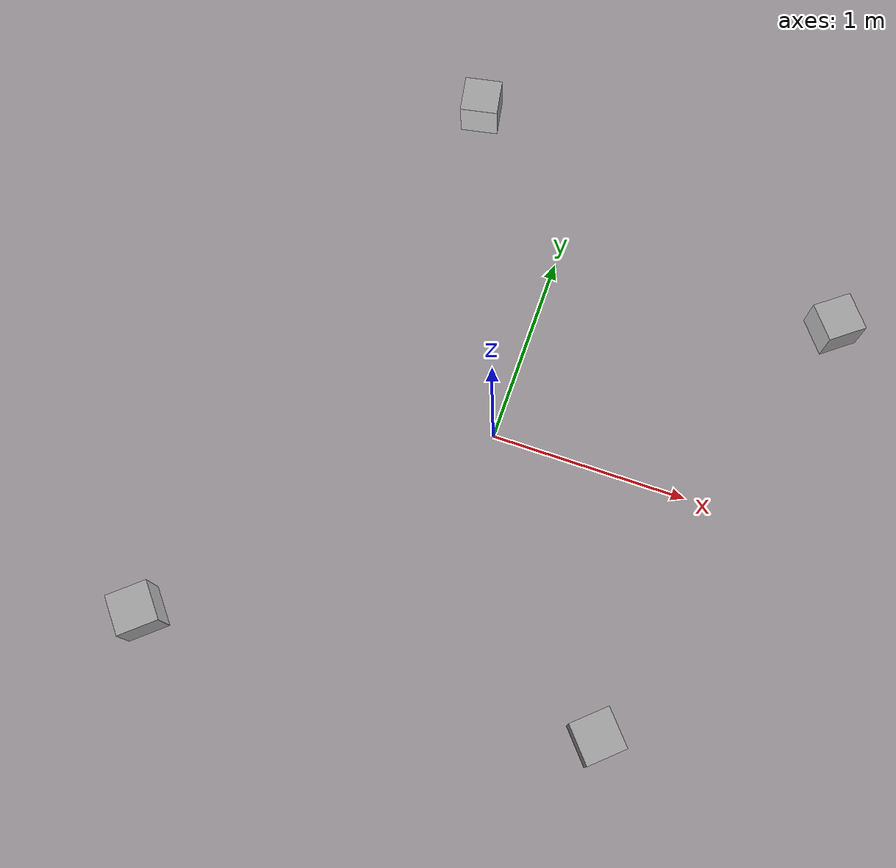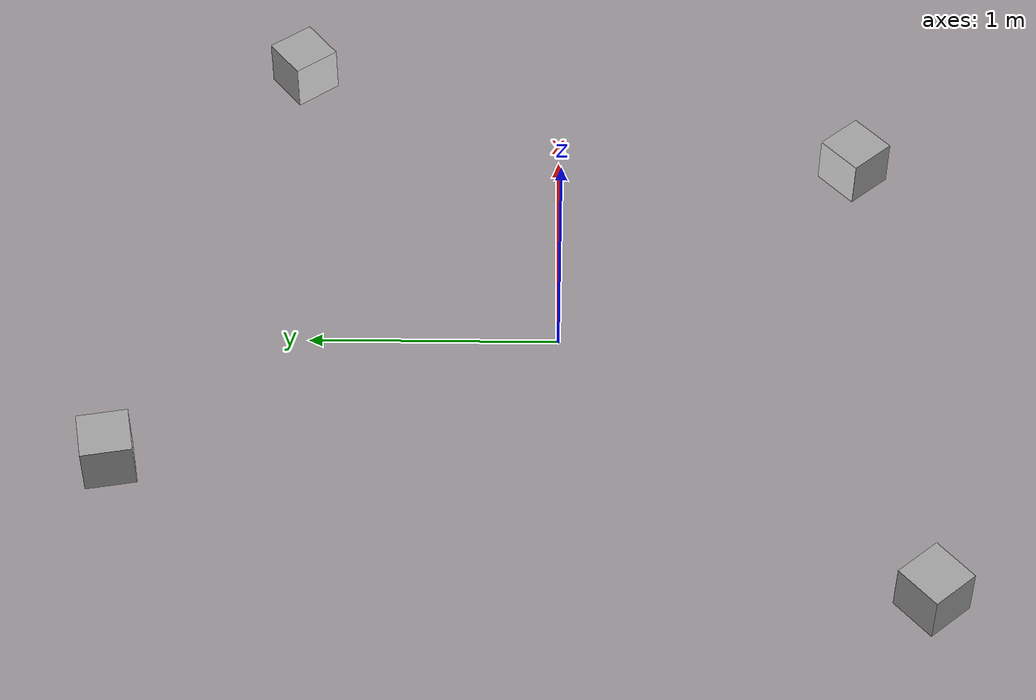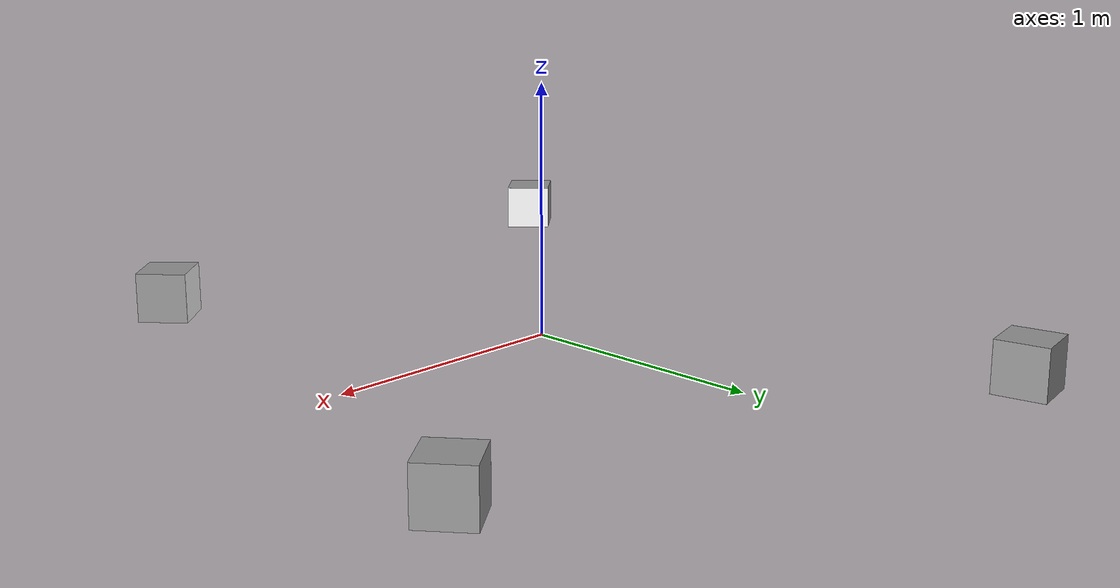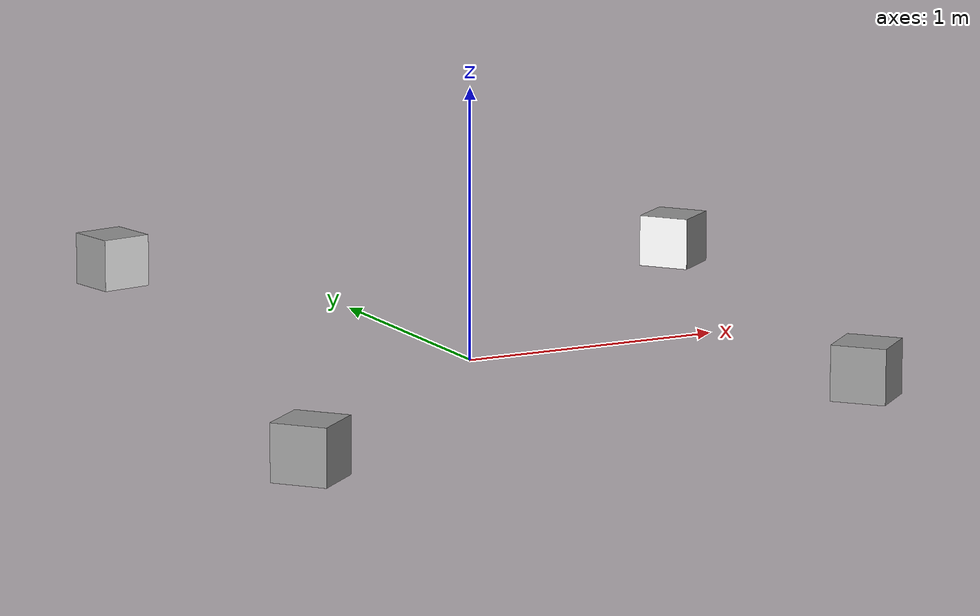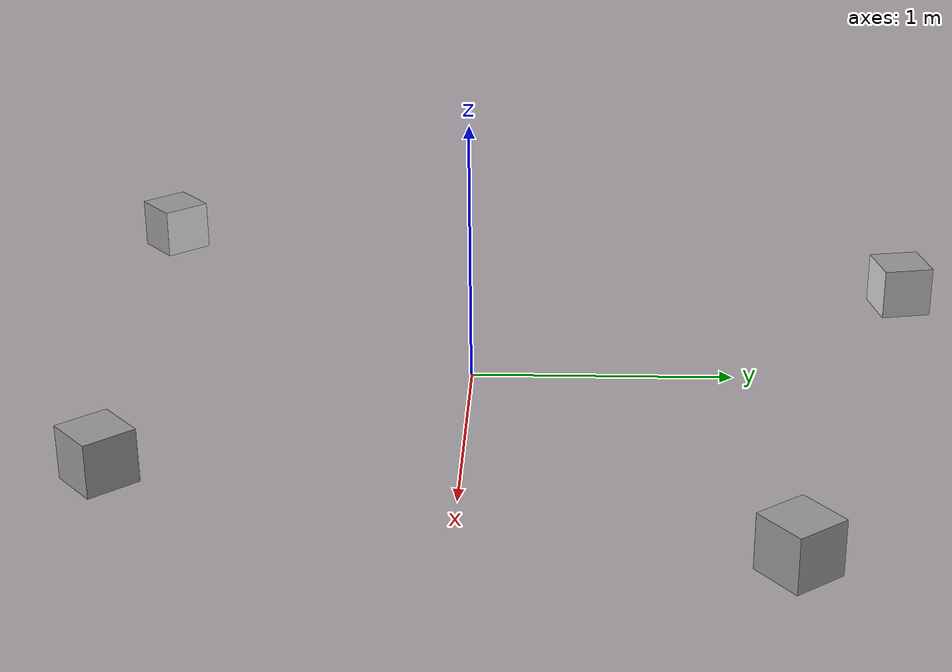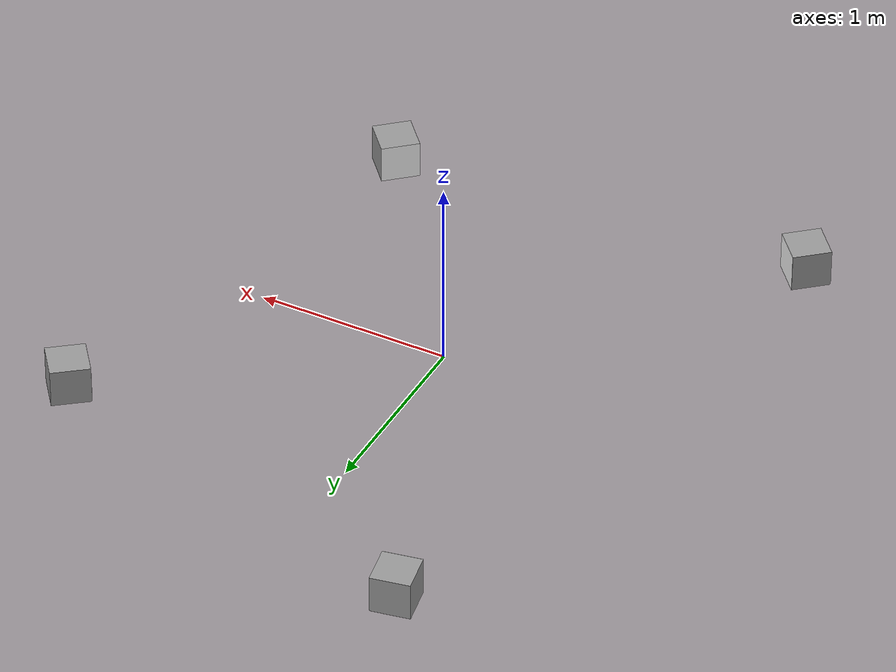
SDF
<?xml version='1.0'?>
<sdf version='1.7'>
  <model name='new_world'>
    <model name='marker11_box'>
      <link name='marker'>
        <inertial>
          <mass>0.1</mass>
          <inertia>
            <ixx>0</ixx>
            <ixy>0</ixy>
            <ixz>0</ixz>
            <iyy>0</iyy>
            <iyz>0</iyz>
            <izz>0</izz>
          </inertia>
          <pose>0 0 0 0 -0 0</pose>
        </inertial>
        <self_collide>1</self_collide>
        <kinematic>0</kinematic>
        <gravity>1</gravity>
        <enable_wind>0</enable_wind>
        <pose>-0.76428 -0.101106 0.120004 -0.015494 1.56996 -0.015507</pose>
        <visual name='visual'>
          <geometry>
            <box>
              <size>0.2 0.2 0.001</size>
            </box>
          </geometry>
          <material>
            <script>
              <uri>model://marker11/material/scripts</uri>
              <uri>model://marker11/material/textures</uri>
              <name>Aruco/marker11</name>
            </script>
            <shader type='pixel'>
              <normal_map>__default__</normal_map>
            </shader>
            <emissive>0 0 0 1</emissive>
            <ambient>1 1 1 1</ambient>
            <diffuse>1 1 1 1</diffuse>
            <specular>0 0 0 1</specular>
          </material>
          <pose>0 0 0 0 -0 0</pose>
          <transparency>0</transparency>
          <cast_shadows>1</cast_shadows>
        </visual>
        <collision name='collision'>
          <laser_retro>0</laser_retro>
          <max_contacts>10</max_contacts>
          <pose>0 0 0 0 -0 0</pose>
          <geometry>
            <box>
              <size>0.2 0.2 0.02</size>
            </box>
          </geometry>
          <surface>
            <friction>
              <ode>
                <mu>1</mu>
                <mu2>1</mu2>
                <fdir1>0 0 0</fdir1>
                <slip1>0</slip1>
                <slip2>0</slip2>
              </ode>
              <torsional>
                <coefficient>1</coefficient>
                <patch_radius>0</patch_radius>
                <surface_radius>0</surface_radius>
                <use_patch_radius>1</use_patch_radius>
                <ode>
                  <slip>0</slip>
                </ode>
              </torsional>
            </friction>
            <bounce>
              <restitution_coefficient>0</restitution_coefficient>
              <threshold>1e+06</threshold>
            </bounce>
            <contact>
              <collide_without_contact>0</collide_without_contact>
              <collide_without_contact_bitmask>1</collide_without_contact_bitmask>
              <collide_bitmask>1</collide_bitmask>
              <ode>
                <soft_cfm>0</soft_cfm>
                <soft_erp>0.2</soft_erp>
                <kp>1e+13</kp>
                <kd>1</kd>
                <max_vel>0.01</max_vel>
                <min_depth>0</min_depth>
              </ode>
              <bullet>
                <split_impulse>1</split_impulse>
                <split_impulse_penetration_threshold>-0.01</split_impulse_penetration_threshold>
                <soft_cfm>0</soft_cfm>
                <soft_erp>0.2</soft_erp>
                <kp>1e+13</kp>
                <kd>1</kd>
              </bullet>
            </contact>
          </surface>
        </collision>
      </link>
      <link name='link_1'>
        <inertial>
          <mass>1</mass>
          <inertia>
            <ixx>0.166667</ixx>
            <ixy>0</ixy>
            <ixz>0</ixz>
            <iyy>0.166667</iyy>
            <iyz>0</iyz>
            <izz>0.166667</izz>
          </inertia>
          <pose>0 0 0 0 -0 0</pose>
        </inertial>
        <pose>-0.86428 -0.101106 0.12 -1.3e-05 -4.2e-05 0</pose>
        <gravity>1</gravity>
        <self_collide>0</self_collide>
        <kinematic>0</kinematic>
        <enable_wind>0</enable_wind>
        <visual name='visual'>
          <pose>0 0 0 0 -0 0</pose>
          <geometry>
            <box>
              <size>0.2 0.2 0.2</size>
            </box>
          </geometry>
          <material>
            <lighting>1</lighting>
            <script>
              <uri>file://media/materials/scripts/gazebo.material</uri>
              <name>Gazebo/Grey</name>
            </script>
            <shader type='pixel'>
              <normal_map>__default__</normal_map>
            </shader>
            <emissive>0 0 0 1</emissive>
            <ambient>0.3 0.3 0.3 1</ambient>
            <diffuse>0.7 0.7 0.7 1</diffuse>
            <specular>0.01 0.01 0.01 1</specular>
          </material>
          <transparency>0</transparency>
          <cast_shadows>1</cast_shadows>
        </visual>
        <collision name='collision'>
          <laser_retro>0</laser_retro>
          <max_contacts>10</max_contacts>
          <pose>0 0 0 0 -0 0</pose>
          <geometry>
            <box>
              <size>0.2 0.2 0.2</size>
            </box>
          </geometry>
          <surface>
            <friction>
              <ode>
                <mu>1</mu>
                <mu2>1</mu2>
                <fdir1>0 0 0</fdir1>
                <slip1>0</slip1>
                <slip2>0</slip2>
              </ode>
              <torsional>
                <coefficient>1</coefficient>
                <patch_radius>0</patch_radius>
                <surface_radius>0</surface_radius>
                <use_patch_radius>1</use_patch_radius>
                <ode>
                  <slip>0</slip>
                </ode>
              </torsional>
            </friction>
            <bounce>
              <restitution_coefficient>0</restitution_coefficient>
              <threshold>1e+06</threshold>
            </bounce>
            <contact>
              <collide_without_contact>0</collide_without_contact>
              <collide_without_contact_bitmask>1</collide_without_contact_bitmask>
              <collide_bitmask>1</collide_bitmask>
              <ode>
                <soft_cfm>0</soft_cfm>
                <soft_erp>0.2</soft_erp>
                <kp>1e+13</kp>
                <kd>1</kd>
                <max_vel>0.01</max_vel>
                <min_depth>0</min_depth>
              </ode>
              <bullet>
                <split_impulse>1</split_impulse>
                <split_impulse_penetration_threshold>-0.01</split_impulse_penetration_threshold>
                <soft_cfm>0</soft_cfm>
                <soft_erp>0.2</soft_erp>
                <kp>1e+13</kp>
                <kd>1</kd>
              </bullet>
            </contact>
          </surface>
        </collision>
      </link>
      <joint name='link_1_JOINT_3' type='fixed'>
        <parent>link_1</parent>
        <child>marker</child>
        <pose>0 0 0 0 -0 0</pose>
        <physics>
          <ode>
            <limit>
              <cfm>0</cfm>
              <erp>0.2</erp>
            </limit>
            <suspension>
              <cfm>0</cfm>
              <erp>0.2</erp>
            </suspension>
          </ode>
        </physics>
      </joint>
      <static>0</static>
      <allow_auto_disable>1</allow_auto_disable>
      <pose>-0.705951 -0.740992 0 0 -0 0.710858</pose>
    </model>
    <model name='marker15_box'>
      <link name='marker'>
        <inertial>
          <mass>0.1</mass>
          <inertia>
            <ixx>0</ixx>
            <ixy>0</ixy>
            <ixz>0</ixz>
            <iyy>0</iyy>
            <iyz>0</iyz>
            <izz>0</izz>
          </inertia>
          <pose>0 0 0 0 -0 0</pose>
        </inertial>
        <self_collide>1</self_collide>
        <kinematic>0</kinematic>
        <gravity>1</gravity>
        <enable_wind>0</enable_wind>
        <pose>-0.76428 -0.101106 0.120004 -0.015494 1.56996 -0.015507</pose>
        <visual name='visual'>
          <geometry>
            <box>
              <size>0.2 0.2 0.001</size>
            </box>
          </geometry>
          <material>
            <script>
              <uri>model://marker15/material/scripts</uri>
              <uri>model://marker15/material/textures</uri>
              <name>Aruco/marker15</name>
            </script>
            <shader type='pixel'>
              <normal_map>__default__</normal_map>
            </shader>
            <emissive>0 0 0 1</emissive>
            <ambient>1 1 1 1</ambient>
            <diffuse>1 1 1 1</diffuse>
            <specular>0 0 0 1</specular>
          </material>
          <pose>0 0 0 0 -0 0</pose>
          <transparency>0</transparency>
          <cast_shadows>1</cast_shadows>
        </visual>
        <collision name='collision'>
          <laser_retro>0</laser_retro>
          <max_contacts>10</max_contacts>
          <pose>0 0 0 0 -0 0</pose>
          <geometry>
            <box>
              <size>0.2 0.2 0.02</size>
            </box>
          </geometry>
          <surface>
            <friction>
              <ode>
                <mu>1</mu>
                <mu2>1</mu2>
                <fdir1>0 0 0</fdir1>
                <slip1>0</slip1>
                <slip2>0</slip2>
              </ode>
              <torsional>
                <coefficient>1</coefficient>
                <patch_radius>0</patch_radius>
                <surface_radius>0</surface_radius>
                <use_patch_radius>1</use_patch_radius>
                <ode>
                  <slip>0</slip>
                </ode>
              </torsional>
            </friction>
            <bounce>
              <restitution_coefficient>0</restitution_coefficient>
              <threshold>1e+06</threshold>
            </bounce>
            <contact>
              <collide_without_contact>0</collide_without_contact>
              <collide_without_contact_bitmask>1</collide_without_contact_bitmask>
              <collide_bitmask>1</collide_bitmask>
              <ode>
                <soft_cfm>0</soft_cfm>
                <soft_erp>0.2</soft_erp>
                <kp>1e+13</kp>
                <kd>1</kd>
                <max_vel>0.01</max_vel>
                <min_depth>0</min_depth>
              </ode>
              <bullet>
                <split_impulse>1</split_impulse>
                <split_impulse_penetration_threshold>-0.01</split_impulse_penetration_threshold>
                <soft_cfm>0</soft_cfm>
                <soft_erp>0.2</soft_erp>
                <kp>1e+13</kp>
                <kd>1</kd>
              </bullet>
            </contact>
          </surface>
        </collision>
      </link>
      <link name='link_1'>
        <inertial>
          <mass>1</mass>
          <inertia>
            <ixx>0.166667</ixx>
            <ixy>0</ixy>
            <ixz>0</ixz>
            <iyy>0.166667</iyy>
            <iyz>0</iyz>
            <izz>0.166667</izz>
          </inertia>
          <pose>0 0 0 0 -0 0</pose>
        </inertial>
        <pose>-0.86428 -0.101106 0.12 -1.3e-05 -4.2e-05 0</pose>
        <gravity>1</gravity>
        <self_collide>0</self_collide>
        <kinematic>0</kinematic>
        <enable_wind>0</enable_wind>
        <visual name='visual'>
          <pose>0 0 0 0 -0 0</pose>
          <geometry>
            <box>
              <size>0.2 0.2 0.2</size>
            </box>
          </geometry>
          <material>
            <lighting>1</lighting>
            <script>
              <uri>file://media/materials/scripts/gazebo.material</uri>
              <name>Gazebo/Grey</name>
            </script>
            <shader type='pixel'>
              <normal_map>__default__</normal_map>
            </shader>
            <emissive>0 0 0 1</emissive>
            <ambient>0.3 0.3 0.3 1</ambient>
            <diffuse>0.7 0.7 0.7 1</diffuse>
            <specular>0.01 0.01 0.01 1</specular>
          </material>
          <transparency>0</transparency>
          <cast_shadows>1</cast_shadows>
        </visual>
        <collision name='collision'>
          <laser_retro>0</laser_retro>
          <max_contacts>10</max_contacts>
          <pose>0 0 0 0 -0 0</pose>
          <geometry>
            <box>
              <size>0.2 0.2 0.2</size>
            </box>
          </geometry>
          <surface>
            <friction>
              <ode>
                <mu>1</mu>
                <mu2>1</mu2>
                <fdir1>0 0 0</fdir1>
                <slip1>0</slip1>
                <slip2>0</slip2>
              </ode>
              <torsional>
                <coefficient>1</coefficient>
                <patch_radius>0</patch_radius>
                <surface_radius>0</surface_radius>
                <use_patch_radius>1</use_patch_radius>
                <ode>
                  <slip>0</slip>
                </ode>
              </torsional>
            </friction>
            <bounce>
              <restitution_coefficient>0</restitution_coefficient>
              <threshold>1e+06</threshold>
            </bounce>
            <contact>
              <collide_without_contact>0</collide_without_contact>
              <collide_without_contact_bitmask>1</collide_without_contact_bitmask>
              <collide_bitmask>1</collide_bitmask>
              <ode>
                <soft_cfm>0</soft_cfm>
                <soft_erp>0.2</soft_erp>
                <kp>1e+13</kp>
                <kd>1</kd>
                <max_vel>0.01</max_vel>
                <min_depth>0</min_depth>
              </ode>
              <bullet>
                <split_impulse>1</split_impulse>
                <split_impulse_penetration_threshold>-0.01</split_impulse_penetration_threshold>
                <soft_cfm>0</soft_cfm>
                <soft_erp>0.2</soft_erp>
                <kp>1e+13</kp>
                <kd>1</kd>
              </bullet>
            </contact>
          </surface>
        </collision>
      </link>
      <joint name='link_1_JOINT_3' type='fixed'>
        <parent>link_1</parent>
        <child>marker</child>
        <pose>0 0 0 0 -0 0</pose>
        <physics>
          <ode>
            <limit>
              <cfm>0</cfm>
              <erp>0.2</erp>
            </limit>
            <suspension>
              <cfm>0</cfm>
              <erp>0.2</erp>
            </suspension>
          </ode>
        </physics>
      </joint>
      <static>0</static>
      <allow_auto_disable>1</allow_auto_disable>
      <pose>0.267977 -0.649933 -0 0 -0 2.29429</pose>
    </model>
    <model name='marker22_box'>
      <link name='marker'>
        <inertial>
          <mass>0.1</mass>
          <inertia>
            <ixx>0</ixx>
            <ixy>0</ixy>
            <ixz>0</ixz>
            <iyy>0</iyy>
            <iyz>0</iyz>
            <izz>0</izz>
          </inertia>
          <pose>0 0 0 0 -0 0</pose>
        </inertial>
        <self_collide>1</self_collide>
        <kinematic>0</kinematic>
        <gravity>1</gravity>
        <enable_wind>0</enable_wind>
        <pose>-0.76428 -0.101106 0.120004 -0.015494 1.56996 -0.015507</pose>
        <visual name='visual'>
          <geometry>
            <box>
              <size>0.2 0.2 0.001</size>
            </box>
          </geometry>
          <material>
            <script>
              <uri>model://marker22/material/scripts</uri>
              <uri>model://marker22/material/textures</uri>
              <name>Aruco/marker22</name>
            </script>
            <shader type='pixel'>
              <normal_map>__default__</normal_map>
            </shader>
            <emissive>0 0 0 1</emissive>
            <ambient>1 1 1 1</ambient>
            <diffuse>1 1 1 1</diffuse>
            <specular>0 0 0 1</specular>
          </material>
          <pose>0 0 0 0 -0 0</pose>
          <transparency>0</transparency>
          <cast_shadows>1</cast_shadows>
        </visual>
        <collision name='collision'>
          <laser_retro>0</laser_retro>
          <max_contacts>10</max_contacts>
          <pose>0 0 0 0 -0 0</pose>
          <geometry>
            <box>
              <size>0.2 0.2 0.02</size>
            </box>
          </geometry>
          <surface>
            <friction>
              <ode>
                <mu>1</mu>
                <mu2>1</mu2>
                <fdir1>0 0 0</fdir1>
                <slip1>0</slip1>
                <slip2>0</slip2>
              </ode>
              <torsional>
                <coefficient>1</coefficient>
                <patch_radius>0</patch_radius>
                <surface_radius>0</surface_radius>
                <use_patch_radius>1</use_patch_radius>
                <ode>
                  <slip>0</slip>
                </ode>
              </torsional>
            </friction>
            <bounce>
              <restitution_coefficient>0</restitution_coefficient>
              <threshold>1e+06</threshold>
            </bounce>
            <contact>
              <collide_without_contact>0</collide_without_contact>
              <collide_without_contact_bitmask>1</collide_without_contact_bitmask>
              <collide_bitmask>1</collide_bitmask>
              <ode>
                <soft_cfm>0</soft_cfm>
                <soft_erp>0.2</soft_erp>
                <kp>1e+13</kp>
                <kd>1</kd>
                <max_vel>0.01</max_vel>
                <min_depth>0</min_depth>
              </ode>
              <bullet>
                <split_impulse>1</split_impulse>
                <split_impulse_penetration_threshold>-0.01</split_impulse_penetration_threshold>
                <soft_cfm>0</soft_cfm>
                <soft_erp>0.2</soft_erp>
                <kp>1e+13</kp>
                <kd>1</kd>
              </bullet>
            </contact>
          </surface>
        </collision>
      </link>
      <link name='link_1'>
        <inertial>
          <mass>1</mass>
          <inertia>
            <ixx>0.166667</ixx>
            <ixy>0</ixy>
            <ixz>0</ixz>
            <iyy>0.166667</iyy>
            <iyz>0</iyz>
            <izz>0.166667</izz>
          </inertia>
          <pose>0 0 0 0 -0 0</pose>
        </inertial>
        <pose>-0.86428 -0.101106 0.12 -1.3e-05 -4.2e-05 0</pose>
        <gravity>1</gravity>
        <self_collide>0</self_collide>
        <kinematic>0</kinematic>
        <enable_wind>0</enable_wind>
        <visual name='visual'>
          <pose>0 0 0 0 -0 0</pose>
          <geometry>
            <box>
              <size>0.2 0.2 0.2</size>
            </box>
          </geometry>
          <material>
            <lighting>1</lighting>
            <script>
              <uri>file://media/materials/scripts/gazebo.material</uri>
              <name>Gazebo/Grey</name>
            </script>
            <shader type='pixel'>
              <normal_map>__default__</normal_map>
            </shader>
            <emissive>0 0 0 1</emissive>
            <ambient>0.3 0.3 0.3 1</ambient>
            <diffuse>0.7 0.7 0.7 1</diffuse>
            <specular>0.01 0.01 0.01 1</specular>
          </material>
          <transparency>0</transparency>
          <cast_shadows>1</cast_shadows>
        </visual>
        <collision name='collision'>
          <laser_retro>0</laser_retro>
          <max_contacts>10</max_contacts>
          <pose>0 0 0 0 -0 0</pose>
          <geometry>
            <box>
              <size>0.2 0.2 0.2</size>
            </box>
          </geometry>
          <surface>
            <friction>
              <ode>
                <mu>1</mu>
                <mu2>1</mu2>
                <fdir1>0 0 0</fdir1>
                <slip1>0</slip1>
                <slip2>0</slip2>
              </ode>
              <torsional>
                <coefficient>1</coefficient>
                <patch_radius>0</patch_radius>
                <surface_radius>0</surface_radius>
                <use_patch_radius>1</use_patch_radius>
                <ode>
                  <slip>0</slip>
                </ode>
              </torsional>
            </friction>
            <bounce>
              <restitution_coefficient>0</restitution_coefficient>
              <threshold>1e+06</threshold>
            </bounce>
            <contact>
              <collide_without_contact>0</collide_without_contact>
              <collide_without_contact_bitmask>1</collide_without_contact_bitmask>
              <collide_bitmask>1</collide_bitmask>
              <ode>
                <soft_cfm>0</soft_cfm>
                <soft_erp>0.2</soft_erp>
                <kp>1e+13</kp>
                <kd>1</kd>
                <max_vel>0.01</max_vel>
                <min_depth>0</min_depth>
              </ode>
              <bullet>
                <split_impulse>1</split_impulse>
                <split_impulse_penetration_threshold>-0.01</split_impulse_penetration_threshold>
                <soft_cfm>0</soft_cfm>
                <soft_erp>0.2</soft_erp>
                <kp>1e+13</kp>
                <kd>1</kd>
              </bullet>
            </contact>
          </surface>
        </collision>
      </link>
      <joint name='link_1_JOINT_3' type='fixed'>
        <parent>link_1</parent>
        <child>marker</child>
        <pose>0 0 0 0 -0 0</pose>
        <physics>
          <ode>
            <limit>
              <cfm>0</cfm>
              <erp>0.2</erp>
            </limit>
            <suspension>
              <cfm>0</cfm>
              <erp>0.2</erp>
            </suspension>
          </ode>
        </physics>
      </joint>
      <static>0</static>
      <allow_auto_disable>1</allow_auto_disable>
      <pose>0.843717 0.488307 0 0 0 -2.48506</pose>
    </model>
    <model name='marker29_box'>
      <link name='marker'>
        <inertial>
          <mass>0.1</mass>
          <inertia>
            <ixx>0</ixx>
            <ixy>0</ixy>
            <ixz>0</ixz>
            <iyy>0</iyy>
            <iyz>0</iyz>
            <izz>0</izz>
          </inertia>
          <pose>0 0 0 0 -0 0</pose>
        </inertial>
        <self_collide>1</self_collide>
        <kinematic>0</kinematic>
        <gravity>1</gravity>
        <enable_wind>0</enable_wind>
        <pose>-0.76428 -0.101106 0.120004 -0.015494 1.56996 -0.015507</pose>
        <visual name='visual'>
          <geometry>
            <box>
              <size>0.2 0.2 0.001</size>
            </box>
          </geometry>
          <material>
            <script>
              <uri>model://marker29/material/scripts</uri>
              <uri>model://marker29/material/textures</uri>
              <name>Aruco/marker29</name>
            </script>
            <shader type='pixel'>
              <normal_map>__default__</normal_map>
            </shader>
            <emissive>0 0 0 1</emissive>
            <ambient>1 1 1 1</ambient>
            <diffuse>1 1 1 1</diffuse>
            <specular>0 0 0 1</specular>
          </material>
          <pose>0 0 0 0 -0 0</pose>
          <transparency>0</transparency>
          <cast_shadows>1</cast_shadows>
        </visual>
        <collision name='collision'>
          <laser_retro>0</laser_retro>
          <max_contacts>10</max_contacts>
          <pose>0 0 0 0 -0 0</pose>
          <geometry>
            <box>
              <size>0.2 0.2 0.02</size>
            </box>
          </geometry>
          <surface>
            <friction>
              <ode>
                <mu>1</mu>
                <mu2>1</mu2>
                <fdir1>0 0 0</fdir1>
                <slip1>0</slip1>
                <slip2>0</slip2>
              </ode>
              <torsional>
                <coefficient>1</coefficient>
                <patch_radius>0</patch_radius>
                <surface_radius>0</surface_radius>
                <use_patch_radius>1</use_patch_radius>
                <ode>
                  <slip>0</slip>
                </ode>
              </torsional>
            </friction>
            <bounce>
              <restitution_coefficient>0</restitution_coefficient>
              <threshold>1e+06</threshold>
            </bounce>
            <contact>
              <collide_without_contact>0</collide_without_contact>
              <collide_without_contact_bitmask>1</collide_without_contact_bitmask>
              <collide_bitmask>1</collide_bitmask>
              <ode>
                <soft_cfm>0</soft_cfm>
                <soft_erp>0.2</soft_erp>
                <kp>1e+13</kp>
                <kd>1</kd>
                <max_vel>0.01</max_vel>
                <min_depth>0</min_depth>
              </ode>
              <bullet>
                <split_impulse>1</split_impulse>
                <split_impulse_penetration_threshold>-0.01</split_impulse_penetration_threshold>
                <soft_cfm>0</soft_cfm>
                <soft_erp>0.2</soft_erp>
                <kp>1e+13</kp>
                <kd>1</kd>
              </bullet>
            </contact>
          </surface>
        </collision>
      </link>
      <link name='link_1'>
        <inertial>
          <mass>1</mass>
          <inertia>
            <ixx>0.166667</ixx>
            <ixy>0</ixy>
            <ixz>0</ixz>
            <iyy>0.166667</iyy>
            <iyz>0</iyz>
            <izz>0.166667</izz>
          </inertia>
          <pose>0 0 0 0 -0 0</pose>
        </inertial>
        <pose>-0.86428 -0.101106 0.12 -1.3e-05 -4.2e-05 0</pose>
        <gravity>1</gravity>
        <self_collide>0</self_collide>
        <kinematic>0</kinematic>
        <enable_wind>0</enable_wind>
        <visual name='visual'>
          <pose>0 0 0 0 -0 0</pose>
          <geometry>
            <box>
              <size>0.2 0.2 0.2</size>
            </box>
          </geometry>
          <material>
            <lighting>1</lighting>
            <script>
              <uri>file://media/materials/scripts/gazebo.material</uri>
              <name>Gazebo/Grey</name>
            </script>
            <shader type='pixel'>
              <normal_map>__default__</normal_map>
            </shader>
            <emissive>0 0 0 1</emissive>
            <ambient>0.3 0.3 0.3 1</ambient>
            <diffuse>0.7 0.7 0.7 1</diffuse>
            <specular>0.01 0.01 0.01 1</specular>
          </material>
          <transparency>0</transparency>
          <cast_shadows>1</cast_shadows>
        </visual>
        <collision name='collision'>
          <laser_retro>0</laser_retro>
          <max_contacts>10</max_contacts>
          <pose>0 0 0 0 -0 0</pose>
          <geometry>
            <box>
              <size>0.2 0.2 0.2</size>
            </box>
          </geometry>
          <surface>
            <friction>
              <ode>
                <mu>1</mu>
                <mu2>1</mu2>
                <fdir1>0 0 0</fdir1>
                <slip1>0</slip1>
                <slip2>0</slip2>
              </ode>
              <torsional>
                <coefficient>1</coefficient>
                <patch_radius>0</patch_radius>
                <surface_radius>0</surface_radius>
                <use_patch_radius>1</use_patch_radius>
                <ode>
                  <slip>0</slip>
                </ode>
              </torsional>
            </friction>
            <bounce>
              <restitution_coefficient>0</restitution_coefficient>
              <threshold>1e+06</threshold>
            </bounce>
            <contact>
              <collide_without_contact>0</collide_without_contact>
              <collide_without_contact_bitmask>1</collide_without_contact_bitmask>
              <collide_bitmask>1</collide_bitmask>
              <ode>
                <soft_cfm>0</soft_cfm>
                <soft_erp>0.2</soft_erp>
                <kp>1e+13</kp>
                <kd>1</kd>
                <max_vel>0.01</max_vel>
                <min_depth>0</min_depth>
              </ode>
              <bullet>
                <split_impulse>1</split_impulse>
                <split_impulse_penetration_threshold>-0.01</split_impulse_penetration_threshold>
                <soft_cfm>0</soft_cfm>
                <soft_erp>0.2</soft_erp>
                <kp>1e+13</kp>
                <kd>1</kd>
              </bullet>
            </contact>
          </surface>
        </collision>
      </link>
      <joint name='link_1_JOINT_3' type='fixed'>
        <parent>link_1</parent>
        <child>marker</child>
        <pose>0 0 0 0 -0 0</pose>
        <physics>
          <ode>
            <limit>
              <cfm>0</cfm>
              <erp>0.2</erp>
            </limit>
            <suspension>
              <cfm>0</cfm>
              <erp>0.2</erp>
            </suspension>
          </ode>
        </physics>
      </joint>
      <static>0</static>
      <allow_auto_disable>1</allow_auto_disable>
      <pose>-0.405744 0.902614 0 0 0 -1.38732</pose>
    </model>
    <static>0</static>
    <allow_auto_disable>1</allow_auto_disable>
  </model>
</sdf>
